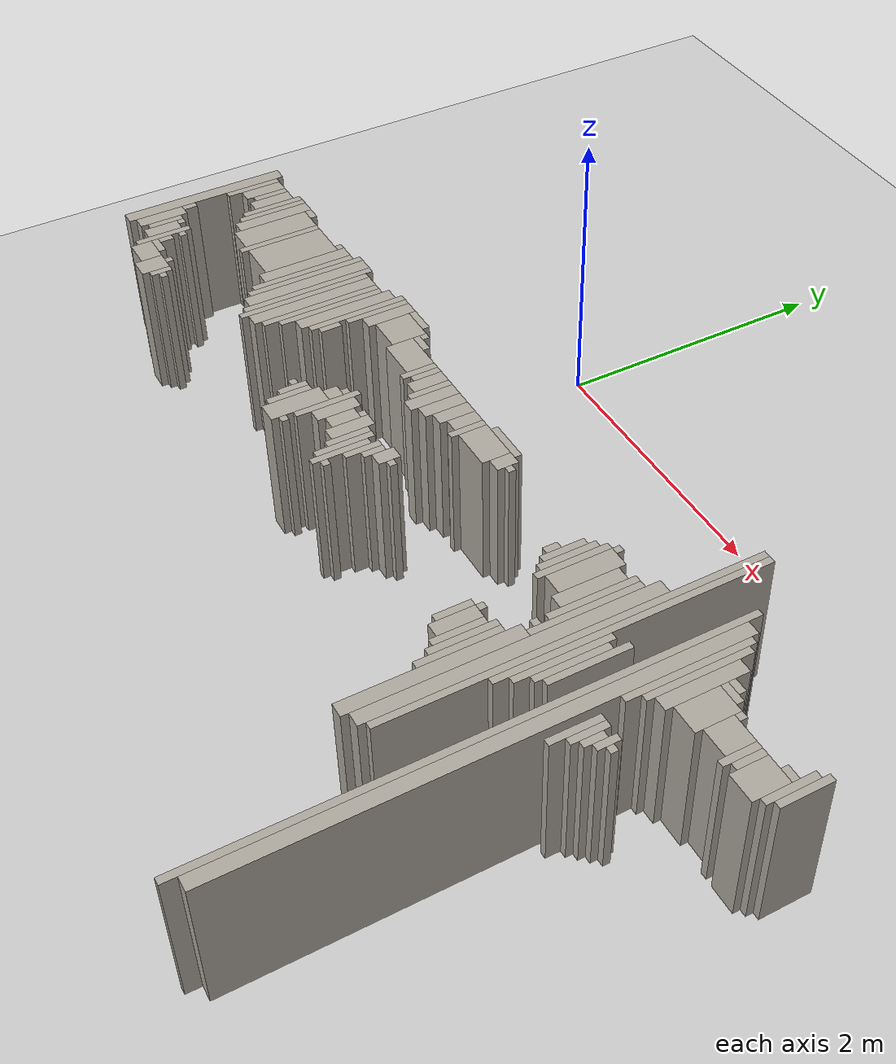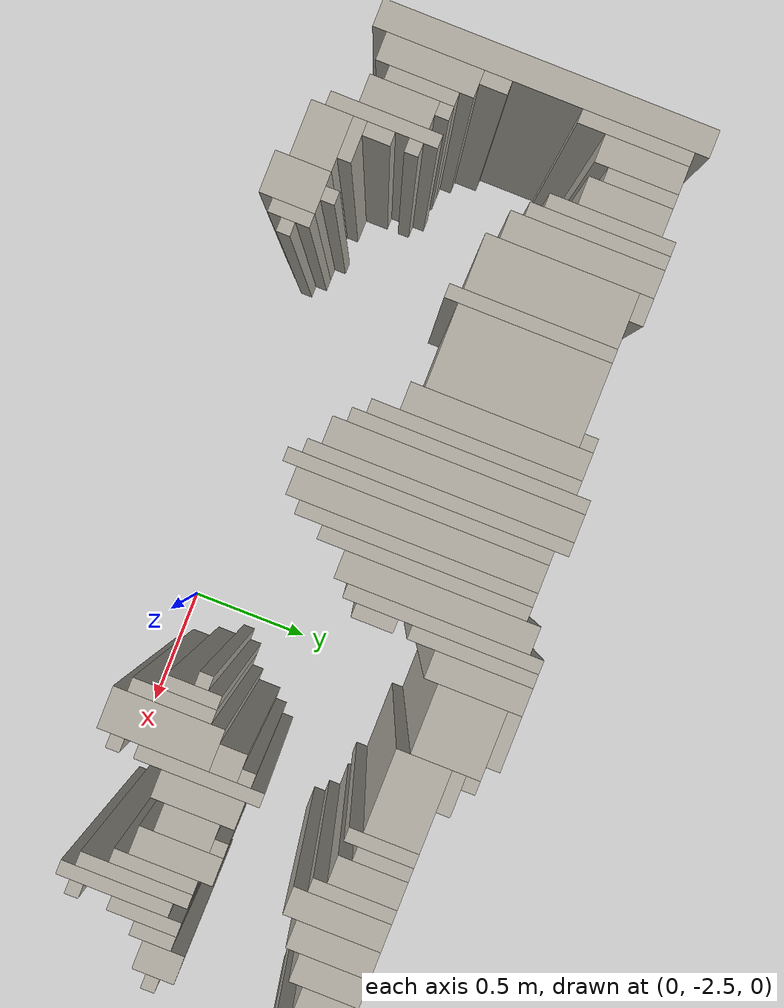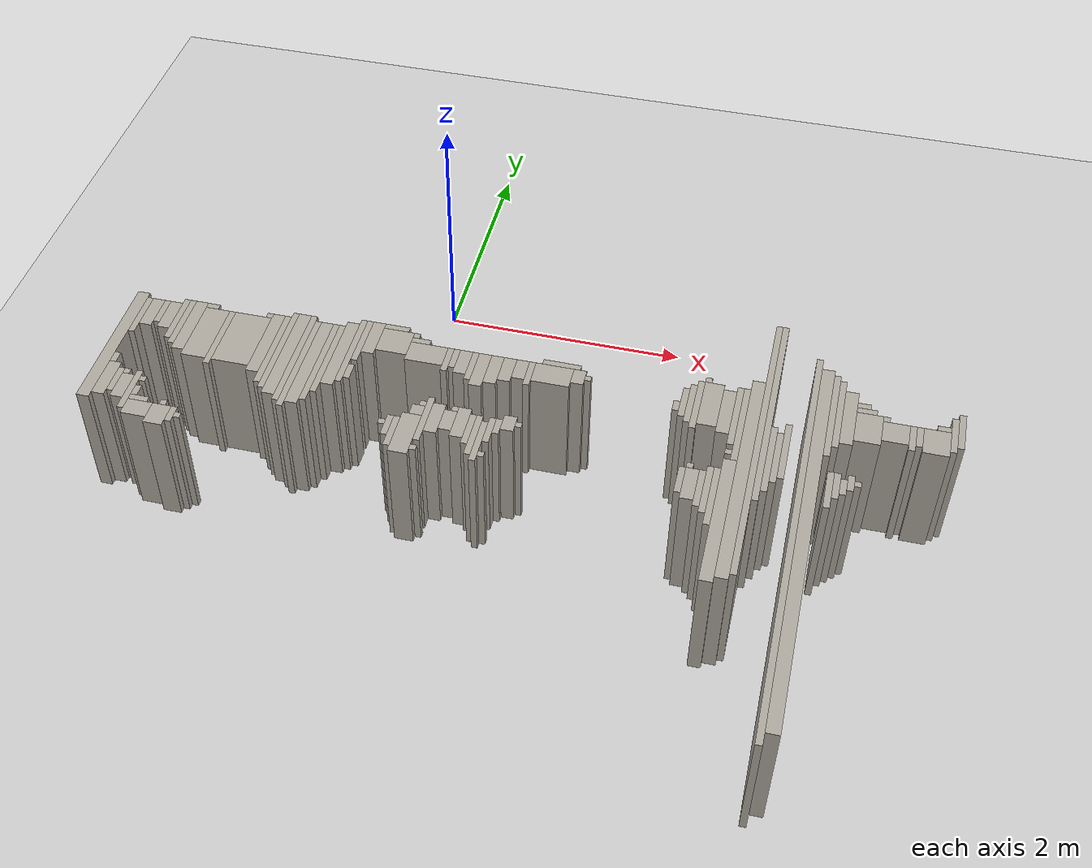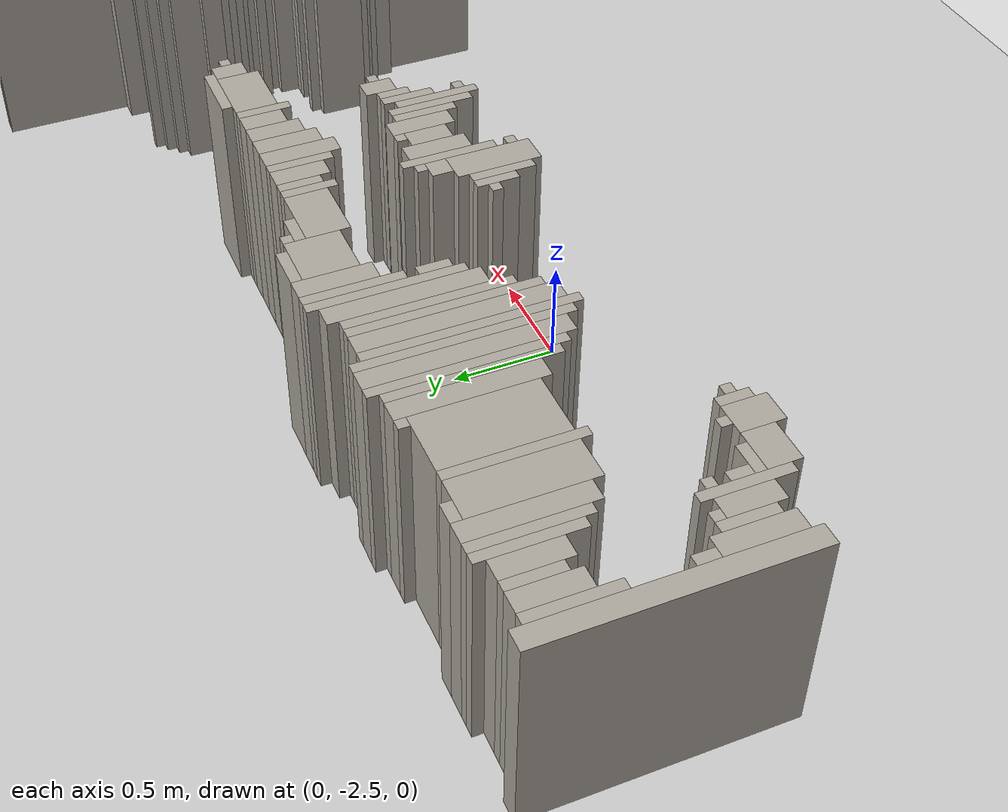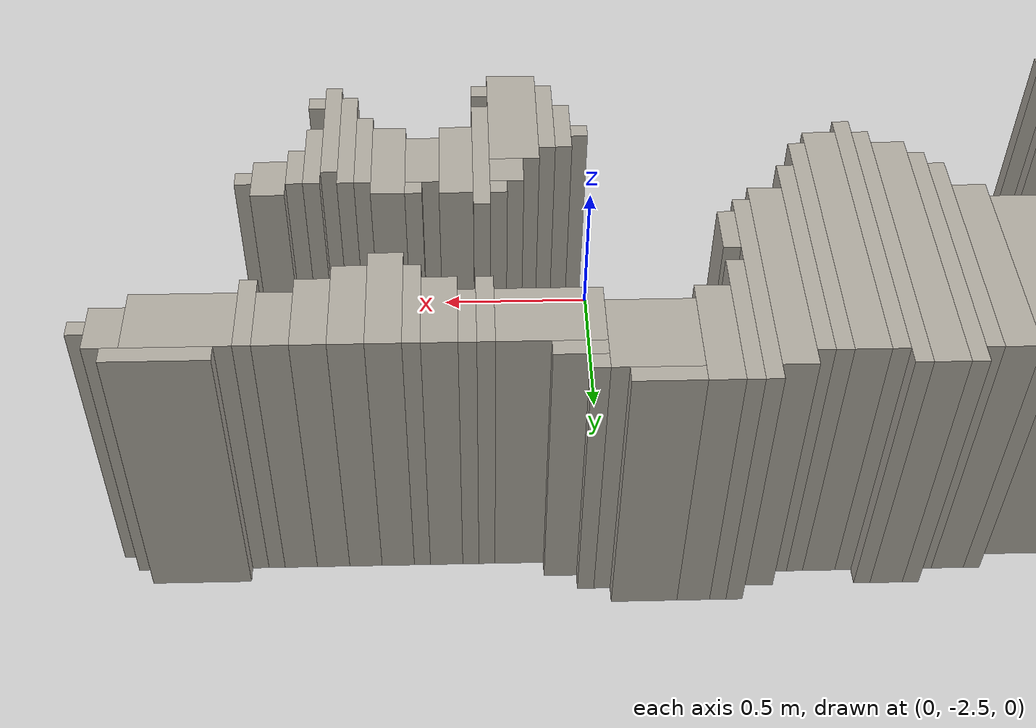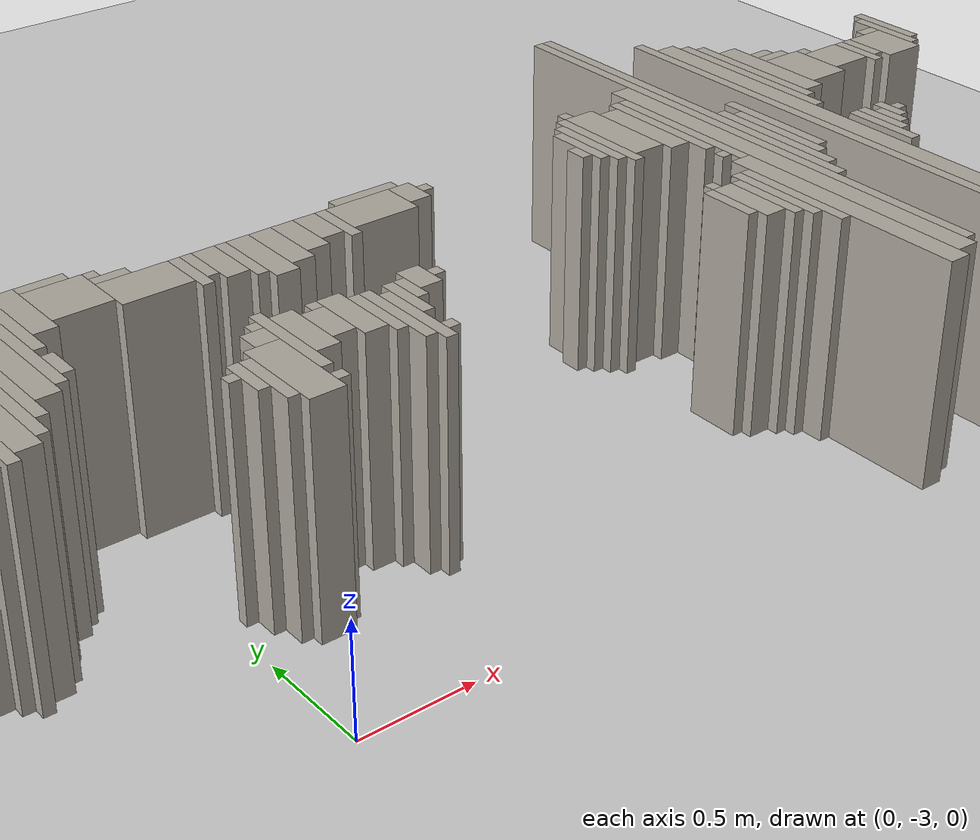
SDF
<sdf version="1.6">
 <world name="fr079_office">
  <include><uri>model://sun</uri></include>
  <include><uri>model://ground_plane</uri></include>
  <model name="fr079_office_walls">
   <static>true</static>
   <link name="w0868">
    <pose>3.177 -2.581 0.500 0 0 0</pose>
    <collision name="c"><geometry><box><size>0.050 3.550 1.000</size></box></geometry></collision>
    <visual name="v">
     <geometry><box><size>0.050 3.550 1.000</size></box></geometry>
     <material><ambient>0.68 0.66 0.62 1</ambient><diffuse>0.68 0.66 0.62 1</diffuse></material>
    </visual>
   </link>
   <link name="w0894">
    <pose>3.252 -2.581 0.500 0 0 0</pose>
    <collision name="c"><geometry><box><size>0.100 3.350 1.000</size></box></geometry></collision>
    <visual name="v">
     <geometry><box><size>0.100 3.350 1.000</size></box></geometry>
     <material><ambient>0.68 0.66 0.62 1</ambient><diffuse>0.68 0.66 0.62 1</diffuse></material>
    </visual>
   </link>
   <link name="w1125">
    <pose>2.652 -2.581 0.500 0 0 0</pose>
    <collision name="c"><geometry><box><size>0.100 1.150 1.000</size></box></geometry></collision>
    <visual name="v">
     <geometry><box><size>0.100 1.150 1.000</size></box></geometry>
     <material><ambient>0.68 0.66 0.62 1</ambient><diffuse>0.68 0.66 0.62 1</diffuse></material>
    </visual>
   </link>
   <link name="w1133">
    <pose>2.752 -2.131 0.500 0 0 0</pose>
    <collision name="c"><geometry><box><size>0.100 1.950 1.000</size></box></geometry></collision>
    <visual name="v">
     <geometry><box><size>0.100 1.950 1.000</size></box></geometry>
     <material><ambient>0.68 0.66 0.62 1</ambient><diffuse>0.68 0.66 0.62 1</diffuse></material>
    </visual>
   </link>
   <link name="w1141">
    <pose>2.827 -1.781 0.500 0 0 0</pose>
    <collision name="c"><geometry><box><size>0.050 2.550 1.000</size></box></geometry></collision>
    <visual name="v">
     <geometry><box><size>0.050 2.550 1.000</size></box></geometry>
     <material><ambient>0.68 0.66 0.62 1</ambient><diffuse>0.68 0.66 0.62 1</diffuse></material>
    </visual>
   </link>
   <link name="w1235">
    <pose>-1.573 -2.556 0.500 0 0 0</pose>
    <collision name="c"><geometry><box><size>0.150 0.200 1.000</size></box></geometry></collision>
    <visual name="v">
     <geometry><box><size>0.150 0.200 1.000</size></box></geometry>
     <material><ambient>0.68 0.66 0.62 1</ambient><diffuse>0.68 0.66 0.62 1</diffuse></material>
    </visual>
   </link>
   <link name="w1236">
    <pose>2.577 -2.381 0.500 0 0 0</pose>
    <collision name="c"><geometry><box><size>0.050 0.550 1.000</size></box></geometry></collision>
    <visual name="v">
     <geometry><box><size>0.050 0.550 1.000</size></box></geometry>
     <material><ambient>0.68 0.66 0.62 1</ambient><diffuse>0.68 0.66 0.62 1</diffuse></material>
    </visual>
   </link>
   <link name="w1254">
    <pose>-1.748 -2.531 0.500 0 0 0</pose>
    <collision name="c"><geometry><box><size>0.200 0.150 1.000</size></box></geometry></collision>
    <visual name="v">
     <geometry><box><size>0.200 0.150 1.000</size></box></geometry>
     <material><ambient>0.68 0.66 0.62 1</ambient><diffuse>0.68 0.66 0.62 1</diffuse></material>
    </visual>
   </link>
   <link name="w1255">
    <pose>-1.473 -2.531 0.500 0 0 0</pose>
    <collision name="c"><geometry><box><size>0.050 0.150 1.000</size></box></geometry></collision>
    <visual name="v">
     <geometry><box><size>0.050 0.150 1.000</size></box></geometry>
     <material><ambient>0.68 0.66 0.62 1</ambient><diffuse>0.68 0.66 0.62 1</diffuse></material>
    </visual>
   </link>
   <link name="w1272">
    <pose>-1.873 -2.356 0.500 0 0 0</pose>
    <collision name="c"><geometry><box><size>0.050 0.400 1.000</size></box></geometry></collision>
    <visual name="v">
     <geometry><box><size>0.050 0.400 1.000</size></box></geometry>
     <material><ambient>0.68 0.66 0.62 1</ambient><diffuse>0.68 0.66 0.62 1</diffuse></material>
    </visual>
   </link>
   <link name="w1273">
    <pose>-1.423 -2.531 0.500 0 0 0</pose>
    <collision name="c"><geometry><box><size>0.050 0.050 1.000</size></box></geometry></collision>
    <visual name="v">
     <geometry><box><size>0.050 0.050 1.000</size></box></geometry>
     <material><ambient>0.68 0.66 0.62 1</ambient><diffuse>0.68 0.66 0.62 1</diffuse></material>
    </visual>
   </link>
   <link name="w1274">
    <pose>2.527 -2.331 0.500 0 0 0</pose>
    <collision name="c"><geometry><box><size>0.050 0.450 1.000</size></box></geometry></collision>
    <visual name="v">
     <geometry><box><size>0.050 0.450 1.000</size></box></geometry>
     <material><ambient>0.68 0.66 0.62 1</ambient><diffuse>0.68 0.66 0.62 1</diffuse></material>
    </visual>
   </link>
   <link name="w1284">
    <pose>-2.198 -1.906 0.500 0 0 0</pose>
    <collision name="c"><geometry><box><size>0.100 1.200 1.000</size></box></geometry></collision>
    <visual name="v">
     <geometry><box><size>0.100 1.200 1.000</size></box></geometry>
     <material><ambient>0.68 0.66 0.62 1</ambient><diffuse>0.68 0.66 0.62 1</diffuse></material>
    </visual>
   </link>
   <link name="w1285">
    <pose>0.277 -2.306 0.500 0 0 0</pose>
    <collision name="c"><geometry><box><size>0.150 0.400 1.000</size></box></geometry></collision>
    <visual name="v">
     <geometry><box><size>0.150 0.400 1.000</size></box></geometry>
     <material><ambient>0.68 0.66 0.62 1</ambient><diffuse>0.68 0.66 0.62 1</diffuse></material>
    </visual>
   </link>
   <link name="w1286">
    <pose>2.477 -2.331 0.500 0 0 0</pose>
    <collision name="c"><geometry><box><size>0.050 0.350 1.000</size></box></geometry></collision>
    <visual name="v">
     <geometry><box><size>0.050 0.350 1.000</size></box></geometry>
     <material><ambient>0.68 0.66 0.62 1</ambient><diffuse>0.68 0.66 0.62 1</diffuse></material>
    </visual>
   </link>
   <link name="w1300">
    <pose>-2.098 -2.281 0.500 0 0 0</pose>
    <collision name="c"><geometry><box><size>0.100 0.350 1.000</size></box></geometry></collision>
    <visual name="v">
     <geometry><box><size>0.100 0.350 1.000</size></box></geometry>
     <material><ambient>0.68 0.66 0.62 1</ambient><diffuse>0.68 0.66 0.62 1</diffuse></material>
    </visual>
   </link>
   <link name="w1301">
    <pose>-1.948 -2.331 0.500 0 0 0</pose>
    <collision name="c"><geometry><box><size>0.100 0.250 1.000</size></box></geometry></collision>
    <visual name="v">
     <geometry><box><size>0.100 0.250 1.000</size></box></geometry>
     <material><ambient>0.68 0.66 0.62 1</ambient><diffuse>0.68 0.66 0.62 1</diffuse></material>
    </visual>
   </link>
   <link name="w1302">
    <pose>-1.773 -2.431 0.500 0 0 0</pose>
    <collision name="c"><geometry><box><size>0.150 0.050 1.000</size></box></geometry></collision>
    <visual name="v">
     <geometry><box><size>0.150 0.050 1.000</size></box></geometry>
     <material><ambient>0.68 0.66 0.62 1</ambient><diffuse>0.68 0.66 0.62 1</diffuse></material>
    </visual>
   </link>
   <link name="w1303">
    <pose>-1.573 -2.431 0.500 0 0 0</pose>
    <collision name="c"><geometry><box><size>0.050 0.050 1.000</size></box></geometry></collision>
    <visual name="v">
     <geometry><box><size>0.050 0.050 1.000</size></box></geometry>
     <material><ambient>0.68 0.66 0.62 1</ambient><diffuse>0.68 0.66 0.62 1</diffuse></material>
    </visual>
   </link>
   <link name="w1304">
    <pose>0.177 -2.306 0.500 0 0 0</pose>
    <collision name="c"><geometry><box><size>0.050 0.300 1.000</size></box></geometry></collision>
    <visual name="v">
     <geometry><box><size>0.050 0.300 1.000</size></box></geometry>
     <material><ambient>0.68 0.66 0.62 1</ambient><diffuse>0.68 0.66 0.62 1</diffuse></material>
    </visual>
   </link>
   <link name="w1305">
    <pose>0.377 -2.431 0.500 0 0 0</pose>
    <collision name="c"><geometry><box><size>0.050 0.050 1.000</size></box></geometry></collision>
    <visual name="v">
     <geometry><box><size>0.050 0.050 1.000</size></box></geometry>
     <material><ambient>0.68 0.66 0.62 1</ambient><diffuse>0.68 0.66 0.62 1</diffuse></material>
    </visual>
   </link>
   <link name="w1306">
    <pose>0.827 -2.256 0.500 0 0 0</pose>
    <collision name="c"><geometry><box><size>0.050 0.400 1.000</size></box></geometry></collision>
    <visual name="v">
     <geometry><box><size>0.050 0.400 1.000</size></box></geometry>
     <material><ambient>0.68 0.66 0.62 1</ambient><diffuse>0.68 0.66 0.62 1</diffuse></material>
    </visual>
   </link>
   <link name="w1307">
    <pose>2.402 -2.306 0.500 0 0 0</pose>
    <collision name="c"><geometry><box><size>0.100 0.300 1.000</size></box></geometry></collision>
    <visual name="v">
     <geometry><box><size>0.100 0.300 1.000</size></box></geometry>
     <material><ambient>0.68 0.66 0.62 1</ambient><diffuse>0.68 0.66 0.62 1</diffuse></material>
    </visual>
   </link>
   <link name="w1320">
    <pose>-2.023 -2.281 0.500 0 0 0</pose>
    <collision name="c"><geometry><box><size>0.050 0.250 1.000</size></box></geometry></collision>
    <visual name="v">
     <geometry><box><size>0.050 0.250 1.000</size></box></geometry>
     <material><ambient>0.68 0.66 0.62 1</ambient><diffuse>0.68 0.66 0.62 1</diffuse></material>
    </visual>
   </link>
   <link name="w1321">
    <pose>-1.823 -2.356 0.500 0 0 0</pose>
    <collision name="c"><geometry><box><size>0.050 0.100 1.000</size></box></geometry></collision>
    <visual name="v">
     <geometry><box><size>0.050 0.100 1.000</size></box></geometry>
     <material><ambient>0.68 0.66 0.62 1</ambient><diffuse>0.68 0.66 0.62 1</diffuse></material>
    </visual>
   </link>
   <link name="w1322">
    <pose>0.777 -2.206 0.500 0 0 0</pose>
    <collision name="c"><geometry><box><size>0.050 0.400 1.000</size></box></geometry></collision>
    <visual name="v">
     <geometry><box><size>0.050 0.400 1.000</size></box></geometry>
     <material><ambient>0.68 0.66 0.62 1</ambient><diffuse>0.68 0.66 0.62 1</diffuse></material>
    </visual>
   </link>
   <link name="w1323">
    <pose>0.877 -2.381 0.500 0 0 0</pose>
    <collision name="c"><geometry><box><size>0.050 0.050 1.000</size></box></geometry></collision>
    <visual name="v">
     <geometry><box><size>0.050 0.050 1.000</size></box></geometry>
     <material><ambient>0.68 0.66 0.62 1</ambient><diffuse>0.68 0.66 0.62 1</diffuse></material>
    </visual>
   </link>
   <link name="w1324">
    <pose>2.327 -2.281 0.500 0 0 0</pose>
    <collision name="c"><geometry><box><size>0.050 0.250 1.000</size></box></geometry></collision>
    <visual name="v">
     <geometry><box><size>0.050 0.250 1.000</size></box></geometry>
     <material><ambient>0.68 0.66 0.62 1</ambient><diffuse>0.68 0.66 0.62 1</diffuse></material>
    </visual>
   </link>
   <link name="w1338">
    <pose>0.127 -2.256 0.500 0 0 0</pose>
    <collision name="c"><geometry><box><size>0.050 0.200 1.000</size></box></geometry></collision>
    <visual name="v">
     <geometry><box><size>0.050 0.200 1.000</size></box></geometry>
     <material><ambient>0.68 0.66 0.62 1</ambient><diffuse>0.68 0.66 0.62 1</diffuse></material>
    </visual>
   </link>
   <link name="w1339">
    <pose>0.377 -2.131 0.500 0 0 0</pose>
    <collision name="c"><geometry><box><size>0.050 0.450 1.000</size></box></geometry></collision>
    <visual name="v">
     <geometry><box><size>0.050 0.450 1.000</size></box></geometry>
     <material><ambient>0.68 0.66 0.62 1</ambient><diffuse>0.68 0.66 0.62 1</diffuse></material>
    </visual>
   </link>
   <link name="w1340">
    <pose>2.877 -1.431 0.500 0 0 0</pose>
    <collision name="c"><geometry><box><size>0.050 1.850 1.000</size></box></geometry></collision>
    <visual name="v">
     <geometry><box><size>0.050 1.850 1.000</size></box></geometry>
     <material><ambient>0.68 0.66 0.62 1</ambient><diffuse>0.68 0.66 0.62 1</diffuse></material>
    </visual>
   </link>
   <link name="w1355">
    <pose>0.727 -2.156 0.500 0 0 0</pose>
    <collision name="c"><geometry><box><size>0.050 0.300 1.000</size></box></geometry></collision>
    <visual name="v">
     <geometry><box><size>0.050 0.300 1.000</size></box></geometry>
     <material><ambient>0.68 0.66 0.62 1</ambient><diffuse>0.68 0.66 0.62 1</diffuse></material>
    </visual>
   </link>
   <link name="w1356">
    <pose>3.377 -2.131 0.500 0 0 0</pose>
    <collision name="c"><geometry><box><size>0.050 0.350 1.000</size></box></geometry></collision>
    <visual name="v">
     <geometry><box><size>0.050 0.350 1.000</size></box></geometry>
     <material><ambient>0.68 0.66 0.62 1</ambient><diffuse>0.68 0.66 0.62 1</diffuse></material>
    </visual>
   </link>
   <link name="w1372">
    <pose>-1.823 -2.231 0.500 0 0 0</pose>
    <collision name="c"><geometry><box><size>0.050 0.050 1.000</size></box></geometry></collision>
    <visual name="v">
     <geometry><box><size>0.050 0.050 1.000</size></box></geometry>
     <material><ambient>0.68 0.66 0.62 1</ambient><diffuse>0.68 0.66 0.62 1</diffuse></material>
    </visual>
   </link>
   <link name="w1373">
    <pose>-0.723 -1.781 0.500 0 0 0</pose>
    <collision name="c"><geometry><box><size>0.050 0.950 1.000</size></box></geometry></collision>
    <visual name="v">
     <geometry><box><size>0.050 0.950 1.000</size></box></geometry>
     <material><ambient>0.68 0.66 0.62 1</ambient><diffuse>0.68 0.66 0.62 1</diffuse></material>
    </visual>
   </link>
   <link name="w1374">
    <pose>0.077 -2.231 0.500 0 0 0</pose>
    <collision name="c"><geometry><box><size>0.050 0.050 1.000</size></box></geometry></collision>
    <visual name="v">
     <geometry><box><size>0.050 0.050 1.000</size></box></geometry>
     <material><ambient>0.68 0.66 0.62 1</ambient><diffuse>0.68 0.66 0.62 1</diffuse></material>
    </visual>
   </link>
   <link name="w1375">
    <pose>0.452 -2.106 0.500 0 0 0</pose>
    <collision name="c"><geometry><box><size>0.100 0.300 1.000</size></box></geometry></collision>
    <visual name="v">
     <geometry><box><size>0.100 0.300 1.000</size></box></geometry>
     <material><ambient>0.68 0.66 0.62 1</ambient><diffuse>0.68 0.66 0.62 1</diffuse></material>
    </visual>
   </link>
   <link name="w1376">
    <pose>0.652 -2.106 0.500 0 0 0</pose>
    <collision name="c"><geometry><box><size>0.100 0.300 1.000</size></box></geometry></collision>
    <visual name="v">
     <geometry><box><size>0.100 0.300 1.000</size></box></geometry>
     <material><ambient>0.68 0.66 0.62 1</ambient><diffuse>0.68 0.66 0.62 1</diffuse></material>
    </visual>
   </link>
   <link name="w1377">
    <pose>0.877 -2.131 0.500 0 0 0</pose>
    <collision name="c"><geometry><box><size>0.050 0.250 1.000</size></box></geometry></collision>
    <visual name="v">
     <geometry><box><size>0.050 0.250 1.000</size></box></geometry>
     <material><ambient>0.68 0.66 0.62 1</ambient><diffuse>0.68 0.66 0.62 1</diffuse></material>
    </visual>
   </link>
   <link name="w1378">
    <pose>2.927 -1.931 0.500 0 0 0</pose>
    <collision name="c"><geometry><box><size>0.050 0.650 1.000</size></box></geometry></collision>
    <visual name="v">
     <geometry><box><size>0.050 0.650 1.000</size></box></geometry>
     <material><ambient>0.68 0.66 0.62 1</ambient><diffuse>0.68 0.66 0.62 1</diffuse></material>
    </visual>
   </link>
   <link name="w1393">
    <pose>-1.973 -2.181 0.500 0 0 0</pose>
    <collision name="c"><geometry><box><size>0.050 0.050 1.000</size></box></geometry></collision>
    <visual name="v">
     <geometry><box><size>0.050 0.050 1.000</size></box></geometry>
     <material><ambient>0.68 0.66 0.62 1</ambient><diffuse>0.68 0.66 0.62 1</diffuse></material>
    </visual>
   </link>
   <link name="w1394">
    <pose>-0.773 -1.731 0.500 0 0 0</pose>
    <collision name="c"><geometry><box><size>0.050 0.950 1.000</size></box></geometry></collision>
    <visual name="v">
     <geometry><box><size>0.050 0.950 1.000</size></box></geometry>
     <material><ambient>0.68 0.66 0.62 1</ambient><diffuse>0.68 0.66 0.62 1</diffuse></material>
    </visual>
   </link>
   <link name="w1395">
    <pose>-0.648 -1.756 0.500 0 0 0</pose>
    <collision name="c"><geometry><box><size>0.100 0.900 1.000</size></box></geometry></collision>
    <visual name="v">
     <geometry><box><size>0.100 0.900 1.000</size></box></geometry>
     <material><ambient>0.68 0.66 0.62 1</ambient><diffuse>0.68 0.66 0.62 1</diffuse></material>
    </visual>
   </link>
   <link name="w1396">
    <pose>0.552 -2.106 0.500 0 0 0</pose>
    <collision name="c"><geometry><box><size>0.100 0.200 1.000</size></box></geometry></collision>
    <visual name="v">
     <geometry><box><size>0.100 0.200 1.000</size></box></geometry>
     <material><ambient>0.68 0.66 0.62 1</ambient><diffuse>0.68 0.66 0.62 1</diffuse></material>
    </visual>
   </link>
   <link name="w1397">
    <pose>3.427 -2.081 0.500 0 0 0</pose>
    <collision name="c"><geometry><box><size>0.050 0.250 1.000</size></box></geometry></collision>
    <visual name="v">
     <geometry><box><size>0.050 0.250 1.000</size></box></geometry>
     <material><ambient>0.68 0.66 0.62 1</ambient><diffuse>0.68 0.66 0.62 1</diffuse></material>
    </visual>
   </link>
   <link name="w1409">
    <pose>-0.848 -1.706 0.500 0 0 0</pose>
    <collision name="c"><geometry><box><size>0.100 0.900 1.000</size></box></geometry></collision>
    <visual name="v">
     <geometry><box><size>0.100 0.900 1.000</size></box></geometry>
     <material><ambient>0.68 0.66 0.62 1</ambient><diffuse>0.68 0.66 0.62 1</diffuse></material>
    </visual>
   </link>
   <link name="w1410">
    <pose>-0.573 -1.731 0.500 0 0 0</pose>
    <collision name="c"><geometry><box><size>0.050 0.850 1.000</size></box></geometry></collision>
    <visual name="v">
     <geometry><box><size>0.050 0.850 1.000</size></box></geometry>
     <material><ambient>0.68 0.66 0.62 1</ambient><diffuse>0.68 0.66 0.62 1</diffuse></material>
    </visual>
   </link>
   <link name="w1411">
    <pose>0.927 -2.081 0.500 0 0 0</pose>
    <collision name="c"><geometry><box><size>0.050 0.150 1.000</size></box></geometry></collision>
    <visual name="v">
     <geometry><box><size>0.050 0.150 1.000</size></box></geometry>
     <material><ambient>0.68 0.66 0.62 1</ambient><diffuse>0.68 0.66 0.62 1</diffuse></material>
    </visual>
   </link>
   <link name="w1412">
    <pose>2.377 -2.131 0.500 0 0 0</pose>
    <collision name="c"><geometry><box><size>0.050 0.050 1.000</size></box></geometry></collision>
    <visual name="v">
     <geometry><box><size>0.050 0.050 1.000</size></box></geometry>
     <material><ambient>0.68 0.66 0.62 1</ambient><diffuse>0.68 0.66 0.62 1</diffuse></material>
    </visual>
   </link>
   <link name="w1413">
    <pose>2.977 -1.906 0.500 0 0 0</pose>
    <collision name="c"><geometry><box><size>0.050 0.500 1.000</size></box></geometry></collision>
    <visual name="v">
     <geometry><box><size>0.050 0.500 1.000</size></box></geometry>
     <material><ambient>0.68 0.66 0.62 1</ambient><diffuse>0.68 0.66 0.62 1</diffuse></material>
    </visual>
   </link>
   <link name="w1414">
    <pose>3.477 -2.081 0.500 0 0 0</pose>
    <collision name="c"><geometry><box><size>0.050 0.150 1.000</size></box></geometry></collision>
    <visual name="v">
     <geometry><box><size>0.050 0.150 1.000</size></box></geometry>
     <material><ambient>0.68 0.66 0.62 1</ambient><diffuse>0.68 0.66 0.62 1</diffuse></material>
    </visual>
   </link>
   <link name="w1424">
    <pose>-2.123 -2.056 0.500 0 0 0</pose>
    <collision name="c"><geometry><box><size>0.050 0.100 1.000</size></box></geometry></collision>
    <visual name="v">
     <geometry><box><size>0.050 0.100 1.000</size></box></geometry>
     <material><ambient>0.68 0.66 0.62 1</ambient><diffuse>0.68 0.66 0.62 1</diffuse></material>
    </visual>
   </link>
   <link name="w1425">
    <pose>-0.923 -1.681 0.500 0 0 0</pose>
    <collision name="c"><geometry><box><size>0.050 0.850 1.000</size></box></geometry></collision>
    <visual name="v">
     <geometry><box><size>0.050 0.850 1.000</size></box></geometry>
     <material><ambient>0.68 0.66 0.62 1</ambient><diffuse>0.68 0.66 0.62 1</diffuse></material>
    </visual>
   </link>
   <link name="w1426">
    <pose>0.302 -2.056 0.500 0 0 0</pose>
    <collision name="c"><geometry><box><size>0.100 0.100 1.000</size></box></geometry></collision>
    <visual name="v">
     <geometry><box><size>0.100 0.100 1.000</size></box></geometry>
     <material><ambient>0.68 0.66 0.62 1</ambient><diffuse>0.68 0.66 0.62 1</diffuse></material>
    </visual>
   </link>
   <link name="w1427">
    <pose>1.002 -2.031 0.500 0 0 0</pose>
    <collision name="c"><geometry><box><size>0.100 0.150 1.000</size></box></geometry></collision>
    <visual name="v">
     <geometry><box><size>0.100 0.150 1.000</size></box></geometry>
     <material><ambient>0.68 0.66 0.62 1</ambient><diffuse>0.68 0.66 0.62 1</diffuse></material>
    </visual>
   </link>
   <link name="w1428">
    <pose>3.027 -1.831 0.500 0 0 0</pose>
    <collision name="c"><geometry><box><size>0.050 0.550 1.000</size></box></geometry></collision>
    <visual name="v">
     <geometry><box><size>0.050 0.550 1.000</size></box></geometry>
     <material><ambient>0.68 0.66 0.62 1</ambient><diffuse>0.68 0.66 0.62 1</diffuse></material>
    </visual>
   </link>
   <link name="w1429">
    <pose>3.527 -2.031 0.500 0 0 0</pose>
    <collision name="c"><geometry><box><size>0.050 0.150 1.000</size></box></geometry></collision>
    <visual name="v">
     <geometry><box><size>0.050 0.150 1.000</size></box></geometry>
     <material><ambient>0.68 0.66 0.62 1</ambient><diffuse>0.68 0.66 0.62 1</diffuse></material>
    </visual>
   </link>
   <link name="w1438">
    <pose>-0.973 -1.681 0.500 0 0 0</pose>
    <collision name="c"><geometry><box><size>0.050 0.750 1.000</size></box></geometry></collision>
    <visual name="v">
     <geometry><box><size>0.050 0.750 1.000</size></box></geometry>
     <material><ambient>0.68 0.66 0.62 1</ambient><diffuse>0.68 0.66 0.62 1</diffuse></material>
    </visual>
   </link>
   <link name="w1439">
    <pose>-0.523 -1.681 0.500 0 0 0</pose>
    <collision name="c"><geometry><box><size>0.050 0.750 1.000</size></box></geometry></collision>
    <visual name="v">
     <geometry><box><size>0.050 0.750 1.000</size></box></geometry>
     <material><ambient>0.68 0.66 0.62 1</ambient><diffuse>0.68 0.66 0.62 1</diffuse></material>
    </visual>
   </link>
   <link name="w1440">
    <pose>1.077 -2.031 0.500 0 0 0</pose>
    <collision name="c"><geometry><box><size>0.050 0.050 1.000</size></box></geometry></collision>
    <visual name="v">
     <geometry><box><size>0.050 0.050 1.000</size></box></geometry>
     <material><ambient>0.68 0.66 0.62 1</ambient><diffuse>0.68 0.66 0.62 1</diffuse></material>
    </visual>
   </link>
   <link name="w1441">
    <pose>3.577 -2.031 0.500 0 0 0</pose>
    <collision name="c"><geometry><box><size>0.050 0.050 1.000</size></box></geometry></collision>
    <visual name="v">
     <geometry><box><size>0.050 0.050 1.000</size></box></geometry>
     <material><ambient>0.68 0.66 0.62 1</ambient><diffuse>0.68 0.66 0.62 1</diffuse></material>
    </visual>
   </link>
   <link name="w1456">
    <pose>0.327 -1.981 0.500 0 0 0</pose>
    <collision name="c"><geometry><box><size>0.050 0.050 1.000</size></box></geometry></collision>
    <visual name="v">
     <geometry><box><size>0.050 0.050 1.000</size></box></geometry>
     <material><ambient>0.68 0.66 0.62 1</ambient><diffuse>0.68 0.66 0.62 1</diffuse></material>
    </visual>
   </link>
   <link name="w1457">
    <pose>0.577 -1.981 0.500 0 0 0</pose>
    <collision name="c"><geometry><box><size>0.050 0.050 1.000</size></box></geometry></collision>
    <visual name="v">
     <geometry><box><size>0.050 0.050 1.000</size></box></geometry>
     <material><ambient>0.68 0.66 0.62 1</ambient><diffuse>0.68 0.66 0.62 1</diffuse></material>
    </visual>
   </link>
   <link name="w1458">
    <pose>2.677 -1.631 0.500 0 0 0</pose>
    <collision name="c"><geometry><box><size>0.050 0.750 1.000</size></box></geometry></collision>
    <visual name="v">
     <geometry><box><size>0.050 0.750 1.000</size></box></geometry>
     <material><ambient>0.68 0.66 0.62 1</ambient><diffuse>0.68 0.66 0.62 1</diffuse></material>
    </visual>
   </link>
   <link name="w1470">
    <pose>-1.423 -1.656 0.500 0 0 0</pose>
    <collision name="c"><geometry><box><size>0.050 0.600 1.000</size></box></geometry></collision>
    <visual name="v">
     <geometry><box><size>0.050 0.600 1.000</size></box></geometry>
     <material><ambient>0.68 0.66 0.62 1</ambient><diffuse>0.68 0.66 0.62 1</diffuse></material>
    </visual>
   </link>
   <link name="w1471">
    <pose>-1.048 -1.631 0.500 0 0 0</pose>
    <collision name="c"><geometry><box><size>0.100 0.650 1.000</size></box></geometry></collision>
    <visual name="v">
     <geometry><box><size>0.100 0.650 1.000</size></box></geometry>
     <material><ambient>0.68 0.66 0.62 1</ambient><diffuse>0.68 0.66 0.62 1</diffuse></material>
    </visual>
   </link>
   <link name="w1472">
    <pose>-0.448 -1.606 0.500 0 0 0</pose>
    <collision name="c"><geometry><box><size>0.100 0.700 1.000</size></box></geometry></collision>
    <visual name="v">
     <geometry><box><size>0.100 0.700 1.000</size></box></geometry>
     <material><ambient>0.68 0.66 0.62 1</ambient><diffuse>0.68 0.66 0.62 1</diffuse></material>
    </visual>
   </link>
   <link name="w1473">
    <pose>2.627 -1.931 0.500 0 0 0</pose>
    <collision name="c"><geometry><box><size>0.050 0.050 1.000</size></box></geometry></collision>
    <visual name="v">
     <geometry><box><size>0.050 0.050 1.000</size></box></geometry>
     <material><ambient>0.68 0.66 0.62 1</ambient><diffuse>0.68 0.66 0.62 1</diffuse></material>
    </visual>
   </link>
   <link name="w1490">
    <pose>-1.548 -1.631 0.500 0 0 0</pose>
    <collision name="c"><geometry><box><size>0.200 0.550 1.000</size></box></geometry></collision>
    <visual name="v">
     <geometry><box><size>0.200 0.550 1.000</size></box></geometry>
     <material><ambient>0.68 0.66 0.62 1</ambient><diffuse>0.68 0.66 0.62 1</diffuse></material>
    </visual>
   </link>
   <link name="w1491">
    <pose>-1.248 -1.631 0.500 0 0 0</pose>
    <collision name="c"><geometry><box><size>0.300 0.550 1.000</size></box></geometry></collision>
    <visual name="v">
     <geometry><box><size>0.300 0.550 1.000</size></box></geometry>
     <material><ambient>0.68 0.66 0.62 1</ambient><diffuse>0.68 0.66 0.62 1</diffuse></material>
    </visual>
   </link>
   <link name="w1492">
    <pose>-0.373 -1.556 0.500 0 0 0</pose>
    <collision name="c"><geometry><box><size>0.050 0.700 1.000</size></box></geometry></collision>
    <visual name="v">
     <geometry><box><size>0.050 0.700 1.000</size></box></geometry>
     <material><ambient>0.68 0.66 0.62 1</ambient><diffuse>0.68 0.66 0.62 1</diffuse></material>
    </visual>
   </link>
   <link name="w1506">
    <pose>-1.698 -1.581 0.500 0 0 0</pose>
    <collision name="c"><geometry><box><size>0.100 0.550 1.000</size></box></geometry></collision>
    <visual name="v">
     <geometry><box><size>0.100 0.550 1.000</size></box></geometry>
     <material><ambient>0.68 0.66 0.62 1</ambient><diffuse>0.68 0.66 0.62 1</diffuse></material>
    </visual>
   </link>
   <link name="w1507">
    <pose>-0.323 -1.781 0.500 0 0 0</pose>
    <collision name="c"><geometry><box><size>0.050 0.150 1.000</size></box></geometry></collision>
    <visual name="v">
     <geometry><box><size>0.050 0.150 1.000</size></box></geometry>
     <material><ambient>0.68 0.66 0.62 1</ambient><diffuse>0.68 0.66 0.62 1</diffuse></material>
    </visual>
   </link>
   <link name="w1508">
    <pose>2.627 -1.556 0.500 0 0 0</pose>
    <collision name="c"><geometry><box><size>0.050 0.600 1.000</size></box></geometry></collision>
    <visual name="v">
     <geometry><box><size>0.050 0.600 1.000</size></box></geometry>
     <material><ambient>0.68 0.66 0.62 1</ambient><diffuse>0.68 0.66 0.62 1</diffuse></material>
    </visual>
   </link>
   <link name="w1517">
    <pose>-1.773 -1.556 0.500 0 0 0</pose>
    <collision name="c"><geometry><box><size>0.050 0.500 1.000</size></box></geometry></collision>
    <visual name="v">
     <geometry><box><size>0.050 0.500 1.000</size></box></geometry>
     <material><ambient>0.68 0.66 0.62 1</ambient><diffuse>0.68 0.66 0.62 1</diffuse></material>
    </visual>
   </link>
   <link name="w1518">
    <pose>3.327 -1.381 0.500 0 0 0</pose>
    <collision name="c"><geometry><box><size>0.050 0.850 1.000</size></box></geometry></collision>
    <visual name="v">
     <geometry><box><size>0.050 0.850 1.000</size></box></geometry>
     <material><ambient>0.68 0.66 0.62 1</ambient><diffuse>0.68 0.66 0.62 1</diffuse></material>
    </visual>
   </link>
   <link name="w1533">
    <pose>-2.123 -1.556 0.500 0 0 0</pose>
    <collision name="c"><geometry><box><size>0.050 0.400 1.000</size></box></geometry></collision>
    <visual name="v">
     <geometry><box><size>0.050 0.400 1.000</size></box></geometry>
     <material><ambient>0.68 0.66 0.62 1</ambient><diffuse>0.68 0.66 0.62 1</diffuse></material>
    </visual>
   </link>
   <link name="w1534">
    <pose>-1.823 -1.531 0.500 0 0 0</pose>
    <collision name="c"><geometry><box><size>0.050 0.450 1.000</size></box></geometry></collision>
    <visual name="v">
     <geometry><box><size>0.050 0.450 1.000</size></box></geometry>
     <material><ambient>0.68 0.66 0.62 1</ambient><diffuse>0.68 0.66 0.62 1</diffuse></material>
    </visual>
   </link>
   <link name="w1535">
    <pose>2.327 -1.506 0.500 0 0 0</pose>
    <collision name="c"><geometry><box><size>0.050 0.500 1.000</size></box></geometry></collision>
    <visual name="v">
     <geometry><box><size>0.050 0.500 1.000</size></box></geometry>
     <material><ambient>0.68 0.66 0.62 1</ambient><diffuse>0.68 0.66 0.62 1</diffuse></material>
    </visual>
   </link>
   <link name="w1536">
    <pose>2.552 -1.531 0.500 0 0 0</pose>
    <collision name="c"><geometry><box><size>0.100 0.450 1.000</size></box></geometry></collision>
    <visual name="v">
     <geometry><box><size>0.100 0.450 1.000</size></box></geometry>
     <material><ambient>0.68 0.66 0.62 1</ambient><diffuse>0.68 0.66 0.62 1</diffuse></material>
    </visual>
   </link>
   <link name="w1553">
    <pose>0.652 -1.531 0.500 0 0 0</pose>
    <collision name="c"><geometry><box><size>0.100 0.350 1.000</size></box></geometry></collision>
    <visual name="v">
     <geometry><box><size>0.100 0.350 1.000</size></box></geometry>
     <material><ambient>0.68 0.66 0.62 1</ambient><diffuse>0.68 0.66 0.62 1</diffuse></material>
    </visual>
   </link>
   <link name="w1554">
    <pose>2.277 -1.506 0.500 0 0 0</pose>
    <collision name="c"><geometry><box><size>0.050 0.400 1.000</size></box></geometry></collision>
    <visual name="v">
     <geometry><box><size>0.050 0.400 1.000</size></box></geometry>
     <material><ambient>0.68 0.66 0.62 1</ambient><diffuse>0.68 0.66 0.62 1</diffuse></material>
    </visual>
   </link>
   <link name="w1555">
    <pose>2.427 -1.481 0.500 0 0 0</pose>
    <collision name="c"><geometry><box><size>0.150 0.450 1.000</size></box></geometry></collision>
    <visual name="v">
     <geometry><box><size>0.150 0.450 1.000</size></box></geometry>
     <material><ambient>0.68 0.66 0.62 1</ambient><diffuse>0.68 0.66 0.62 1</diffuse></material>
    </visual>
   </link>
   <link name="w1556">
    <pose>3.377 -1.356 0.500 0 0 0</pose>
    <collision name="c"><geometry><box><size>0.050 0.700 1.000</size></box></geometry></collision>
    <visual name="v">
     <geometry><box><size>0.050 0.700 1.000</size></box></geometry>
     <material><ambient>0.68 0.66 0.62 1</ambient><diffuse>0.68 0.66 0.62 1</diffuse></material>
    </visual>
   </link>
   <link name="w1578">
    <pose>-2.048 -1.506 0.500 0 0 0</pose>
    <collision name="c"><geometry><box><size>0.100 0.300 1.000</size></box></geometry></collision>
    <visual name="v">
     <geometry><box><size>0.100 0.300 1.000</size></box></geometry>
     <material><ambient>0.68 0.66 0.62 1</ambient><diffuse>0.68 0.66 0.62 1</diffuse></material>
    </visual>
   </link>
   <link name="w1579">
    <pose>-1.898 -1.506 0.500 0 0 0</pose>
    <collision name="c"><geometry><box><size>0.100 0.300 1.000</size></box></geometry></collision>
    <visual name="v">
     <geometry><box><size>0.100 0.300 1.000</size></box></geometry>
     <material><ambient>0.68 0.66 0.62 1</ambient><diffuse>0.68 0.66 0.62 1</diffuse></material>
    </visual>
   </link>
   <link name="w1580">
    <pose>-0.323 -1.431 0.500 0 0 0</pose>
    <collision name="c"><geometry><box><size>0.050 0.450 1.000</size></box></geometry></collision>
    <visual name="v">
     <geometry><box><size>0.050 0.450 1.000</size></box></geometry>
     <material><ambient>0.68 0.66 0.62 1</ambient><diffuse>0.68 0.66 0.62 1</diffuse></material>
    </visual>
   </link>
   <link name="w1581">
    <pose>0.577 -1.506 0.500 0 0 0</pose>
    <collision name="c"><geometry><box><size>0.050 0.300 1.000</size></box></geometry></collision>
    <visual name="v">
     <geometry><box><size>0.050 0.300 1.000</size></box></geometry>
     <material><ambient>0.68 0.66 0.62 1</ambient><diffuse>0.68 0.66 0.62 1</diffuse></material>
    </visual>
   </link>
   <link name="w1582">
    <pose>0.752 -1.506 0.500 0 0 0</pose>
    <collision name="c"><geometry><box><size>0.100 0.300 1.000</size></box></geometry></collision>
    <visual name="v">
     <geometry><box><size>0.100 0.300 1.000</size></box></geometry>
     <material><ambient>0.68 0.66 0.62 1</ambient><diffuse>0.68 0.66 0.62 1</diffuse></material>
    </visual>
   </link>
   <link name="w1583">
    <pose>2.227 -1.506 0.500 0 0 0</pose>
    <collision name="c"><geometry><box><size>0.050 0.300 1.000</size></box></geometry></collision>
    <visual name="v">
     <geometry><box><size>0.050 0.300 1.000</size></box></geometry>
     <material><ambient>0.68 0.66 0.62 1</ambient><diffuse>0.68 0.66 0.62 1</diffuse></material>
    </visual>
   </link>
   <link name="w1584">
    <pose>3.452 -1.381 0.500 0 0 0</pose>
    <collision name="c"><geometry><box><size>0.100 0.550 1.000</size></box></geometry></collision>
    <visual name="v">
     <geometry><box><size>0.100 0.550 1.000</size></box></geometry>
     <material><ambient>0.68 0.66 0.62 1</ambient><diffuse>0.68 0.66 0.62 1</diffuse></material>
    </visual>
   </link>
   <link name="w1608">
    <pose>-1.973 -1.481 0.500 0 0 0</pose>
    <collision name="c"><geometry><box><size>0.050 0.250 1.000</size></box></geometry></collision>
    <visual name="v">
     <geometry><box><size>0.050 0.250 1.000</size></box></geometry>
     <material><ambient>0.68 0.66 0.62 1</ambient><diffuse>0.68 0.66 0.62 1</diffuse></material>
    </visual>
   </link>
   <link name="w1609">
    <pose>0.377 -1.481 0.500 0 0 0</pose>
    <collision name="c"><geometry><box><size>0.050 0.250 1.000</size></box></geometry></collision>
    <visual name="v">
     <geometry><box><size>0.050 0.250 1.000</size></box></geometry>
     <material><ambient>0.68 0.66 0.62 1</ambient><diffuse>0.68 0.66 0.62 1</diffuse></material>
    </visual>
   </link>
   <link name="w1610">
    <pose>0.502 -1.481 0.500 0 0 0</pose>
    <collision name="c"><geometry><box><size>0.100 0.250 1.000</size></box></geometry></collision>
    <visual name="v">
     <geometry><box><size>0.100 0.250 1.000</size></box></geometry>
     <material><ambient>0.68 0.66 0.62 1</ambient><diffuse>0.68 0.66 0.62 1</diffuse></material>
    </visual>
   </link>
   <link name="w1611">
    <pose>0.852 -1.481 0.500 0 0 0</pose>
    <collision name="c"><geometry><box><size>0.100 0.250 1.000</size></box></geometry></collision>
    <visual name="v">
     <geometry><box><size>0.100 0.250 1.000</size></box></geometry>
     <material><ambient>0.68 0.66 0.62 1</ambient><diffuse>0.68 0.66 0.62 1</diffuse></material>
    </visual>
   </link>
   <link name="w1612">
    <pose>1.027 -1.481 0.500 0 0 0</pose>
    <collision name="c"><geometry><box><size>0.050 0.250 1.000</size></box></geometry></collision>
    <visual name="v">
     <geometry><box><size>0.050 0.250 1.000</size></box></geometry>
     <material><ambient>0.68 0.66 0.62 1</ambient><diffuse>0.68 0.66 0.62 1</diffuse></material>
    </visual>
   </link>
   <link name="w1613">
    <pose>2.177 -1.556 0.500 0 0 0</pose>
    <collision name="c"><geometry><box><size>0.050 0.100 1.000</size></box></geometry></collision>
    <visual name="v">
     <geometry><box><size>0.050 0.100 1.000</size></box></geometry>
     <material><ambient>0.68 0.66 0.62 1</ambient><diffuse>0.68 0.66 0.62 1</diffuse></material>
    </visual>
   </link>
   <link name="w1614">
    <pose>3.602 -1.456 0.500 0 0 0</pose>
    <collision name="c"><geometry><box><size>0.200 0.300 1.000</size></box></geometry></collision>
    <visual name="v">
     <geometry><box><size>0.200 0.300 1.000</size></box></geometry>
     <material><ambient>0.68 0.66 0.62 1</ambient><diffuse>0.68 0.66 0.62 1</diffuse></material>
    </visual>
   </link>
   <link name="w1615">
    <pose>3.927 -1.481 0.500 0 0 0</pose>
    <collision name="c"><geometry><box><size>0.050 0.250 1.000</size></box></geometry></collision>
    <visual name="v">
     <geometry><box><size>0.050 0.250 1.000</size></box></geometry>
     <material><ambient>0.68 0.66 0.62 1</ambient><diffuse>0.68 0.66 0.62 1</diffuse></material>
    </visual>
   </link>
   <link name="w1616">
    <pose>4.102 -1.481 0.500 0 0 0</pose>
    <collision name="c"><geometry><box><size>0.200 0.250 1.000</size></box></geometry></collision>
    <visual name="v">
     <geometry><box><size>0.200 0.250 1.000</size></box></geometry>
     <material><ambient>0.68 0.66 0.62 1</ambient><diffuse>0.68 0.66 0.62 1</diffuse></material>
    </visual>
   </link>
   <link name="w1638">
    <pose>-0.248 -1.381 0.500 0 0 0</pose>
    <collision name="c"><geometry><box><size>0.100 0.350 1.000</size></box></geometry></collision>
    <visual name="v">
     <geometry><box><size>0.100 0.350 1.000</size></box></geometry>
     <material><ambient>0.68 0.66 0.62 1</ambient><diffuse>0.68 0.66 0.62 1</diffuse></material>
    </visual>
   </link>
   <link name="w1639">
    <pose>0.202 -1.456 0.500 0 0 0</pose>
    <collision name="c"><geometry><box><size>0.300 0.200 1.000</size></box></geometry></collision>
    <visual name="v">
     <geometry><box><size>0.300 0.200 1.000</size></box></geometry>
     <material><ambient>0.68 0.66 0.62 1</ambient><diffuse>0.68 0.66 0.62 1</diffuse></material>
    </visual>
   </link>
   <link name="w1640">
    <pose>0.427 -1.456 0.500 0 0 0</pose>
    <collision name="c"><geometry><box><size>0.050 0.200 1.000</size></box></geometry></collision>
    <visual name="v">
     <geometry><box><size>0.050 0.200 1.000</size></box></geometry>
     <material><ambient>0.68 0.66 0.62 1</ambient><diffuse>0.68 0.66 0.62 1</diffuse></material>
    </visual>
   </link>
   <link name="w1641">
    <pose>0.952 -1.456 0.500 0 0 0</pose>
    <collision name="c"><geometry><box><size>0.100 0.200 1.000</size></box></geometry></collision>
    <visual name="v">
     <geometry><box><size>0.100 0.200 1.000</size></box></geometry>
     <material><ambient>0.68 0.66 0.62 1</ambient><diffuse>0.68 0.66 0.62 1</diffuse></material>
    </visual>
   </link>
   <link name="w1642">
    <pose>1.202 -1.456 0.500 0 0 0</pose>
    <collision name="c"><geometry><box><size>0.300 0.200 1.000</size></box></geometry></collision>
    <visual name="v">
     <geometry><box><size>0.300 0.200 1.000</size></box></geometry>
     <material><ambient>0.68 0.66 0.62 1</ambient><diffuse>0.68 0.66 0.62 1</diffuse></material>
    </visual>
   </link>
   <link name="w1644">
    <pose>3.802 -1.456 0.500 0 0 0</pose>
    <collision name="c"><geometry><box><size>0.200 0.200 1.000</size></box></geometry></collision>
    <visual name="v">
     <geometry><box><size>0.200 0.200 1.000</size></box></geometry>
     <material><ambient>0.68 0.66 0.62 1</ambient><diffuse>0.68 0.66 0.62 1</diffuse></material>
    </visual>
   </link>
   <link name="w1645">
    <pose>3.977 -1.456 0.500 0 0 0</pose>
    <collision name="c"><geometry><box><size>0.050 0.200 1.000</size></box></geometry></collision>
    <visual name="v">
     <geometry><box><size>0.050 0.200 1.000</size></box></geometry>
     <material><ambient>0.68 0.66 0.62 1</ambient><diffuse>0.68 0.66 0.62 1</diffuse></material>
    </visual>
   </link>
   <link name="w1646">
    <pose>4.227 -1.381 0.500 0 0 0</pose>
    <collision name="c"><geometry><box><size>0.050 0.350 1.000</size></box></geometry></collision>
    <visual name="v">
     <geometry><box><size>0.050 0.350 1.000</size></box></geometry>
     <material><ambient>0.68 0.66 0.62 1</ambient><diffuse>0.68 0.66 0.62 1</diffuse></material>
    </visual>
   </link>
   <link name="w1668">
    <pose>-0.073 -1.381 0.500 0 0 0</pose>
    <collision name="c"><geometry><box><size>0.250 0.250 1.000</size></box></geometry></collision>
    <visual name="v">
     <geometry><box><size>0.250 0.250 1.000</size></box></geometry>
     <material><ambient>0.68 0.66 0.62 1</ambient><diffuse>0.68 0.66 0.62 1</diffuse></material>
    </visual>
   </link>
   <link name="w1669">
    <pose>1.402 -1.431 0.500 0 0 0</pose>
    <collision name="c"><geometry><box><size>0.100 0.150 1.000</size></box></geometry></collision>
    <visual name="v">
     <geometry><box><size>0.100 0.150 1.000</size></box></geometry>
     <material><ambient>0.68 0.66 0.62 1</ambient><diffuse>0.68 0.66 0.62 1</diffuse></material>
    </visual>
   </link>
   <link name="w1671">
    <pose>4.277 -1.331 0.500 0 0 0</pose>
    <collision name="c"><geometry><box><size>0.050 0.350 1.000</size></box></geometry></collision>
    <visual name="v">
     <geometry><box><size>0.050 0.350 1.000</size></box></geometry>
     <material><ambient>0.68 0.66 0.62 1</ambient><diffuse>0.68 0.66 0.62 1</diffuse></material>
    </visual>
   </link>
   <link name="w1689">
    <pose>1.477 -1.431 0.500 0 0 0</pose>
    <collision name="c"><geometry><box><size>0.050 0.050 1.000</size></box></geometry></collision>
    <visual name="v">
     <geometry><box><size>0.050 0.050 1.000</size></box></geometry>
     <material><ambient>0.68 0.66 0.62 1</ambient><diffuse>0.68 0.66 0.62 1</diffuse></material>
    </visual>
   </link>
   <link name="w1710">
    <pose>-1.598 -1.331 0.500 0 0 0</pose>
    <collision name="c"><geometry><box><size>0.100 0.050 1.000</size></box></geometry></collision>
    <visual name="v">
     <geometry><box><size>0.100 0.050 1.000</size></box></geometry>
     <material><ambient>0.68 0.66 0.62 1</ambient><diffuse>0.68 0.66 0.62 1</diffuse></material>
    </visual>
   </link>
   <link name="w1711">
    <pose>-1.123 -1.331 0.500 0 0 0</pose>
    <collision name="c"><geometry><box><size>0.050 0.050 1.000</size></box></geometry></collision>
    <visual name="v">
     <geometry><box><size>0.050 0.050 1.000</size></box></geometry>
     <material><ambient>0.68 0.66 0.62 1</ambient><diffuse>0.68 0.66 0.62 1</diffuse></material>
    </visual>
   </link>
   <link name="w1712">
    <pose>0.127 -1.331 0.500 0 0 0</pose>
    <collision name="c"><geometry><box><size>0.150 0.050 1.000</size></box></geometry></collision>
    <visual name="v">
     <geometry><box><size>0.150 0.050 1.000</size></box></geometry>
     <material><ambient>0.68 0.66 0.62 1</ambient><diffuse>0.68 0.66 0.62 1</diffuse></material>
    </visual>
   </link>
   <link name="w1713">
    <pose>1.252 -1.331 0.500 0 0 0</pose>
    <collision name="c"><geometry><box><size>0.300 0.050 1.000</size></box></geometry></collision>
    <visual name="v">
     <geometry><box><size>0.300 0.050 1.000</size></box></geometry>
     <material><ambient>0.68 0.66 0.62 1</ambient><diffuse>0.68 0.66 0.62 1</diffuse></material>
    </visual>
   </link>
   <link name="w1714">
    <pose>3.727 -1.331 0.500 0 0 0</pose>
    <collision name="c"><geometry><box><size>0.050 0.050 1.000</size></box></geometry></collision>
    <visual name="v">
     <geometry><box><size>0.050 0.050 1.000</size></box></geometry>
     <material><ambient>0.68 0.66 0.62 1</ambient><diffuse>0.68 0.66 0.62 1</diffuse></material>
    </visual>
   </link>
   <link name="w1715">
    <pose>4.152 -1.331 0.500 0 0 0</pose>
    <collision name="c"><geometry><box><size>0.100 0.050 1.000</size></box></geometry></collision>
    <visual name="v">
     <geometry><box><size>0.100 0.050 1.000</size></box></geometry>
     <material><ambient>0.68 0.66 0.62 1</ambient><diffuse>0.68 0.66 0.62 1</diffuse></material>
    </visual>
   </link>
   <link name="w1723">
    <pose>0.077 -1.281 0.500 0 0 0</pose>
    <collision name="c"><geometry><box><size>0.050 0.050 1.000</size></box></geometry></collision>
    <visual name="v">
     <geometry><box><size>0.050 0.050 1.000</size></box></geometry>
     <material><ambient>0.68 0.66 0.62 1</ambient><diffuse>0.68 0.66 0.62 1</diffuse></material>
    </visual>
   </link>
   <link name="w1725">
    <pose>3.577 -1.281 0.500 0 0 0</pose>
    <collision name="c"><geometry><box><size>0.150 0.050 1.000</size></box></geometry></collision>
    <visual name="v">
     <geometry><box><size>0.150 0.050 1.000</size></box></geometry>
     <material><ambient>0.68 0.66 0.62 1</ambient><diffuse>0.68 0.66 0.62 1</diffuse></material>
    </visual>
   </link>
   <link name="w1734">
    <pose>-0.098 -1.231 0.500 0 0 0</pose>
    <collision name="c"><geometry><box><size>0.200 0.050 1.000</size></box></geometry></collision>
    <visual name="v">
     <geometry><box><size>0.200 0.050 1.000</size></box></geometry>
     <material><ambient>0.68 0.66 0.62 1</ambient><diffuse>0.68 0.66 0.62 1</diffuse></material>
    </visual>
   </link>
   <link name="w1735">
    <pose>2.377 -1.231 0.500 0 0 0</pose>
    <collision name="c"><geometry><box><size>0.050 0.050 1.000</size></box></geometry></collision>
    <visual name="v">
     <geometry><box><size>0.050 0.050 1.000</size></box></geometry>
     <material><ambient>0.68 0.66 0.62 1</ambient><diffuse>0.68 0.66 0.62 1</diffuse></material>
    </visual>
   </link>
   <link name="w1736">
    <pose>3.552 -1.231 0.500 0 0 0</pose>
    <collision name="c"><geometry><box><size>0.100 0.050 1.000</size></box></geometry></collision>
    <visual name="v">
     <geometry><box><size>0.100 0.050 1.000</size></box></geometry>
     <material><ambient>0.68 0.66 0.62 1</ambient><diffuse>0.68 0.66 0.62 1</diffuse></material>
    </visual>
   </link>
  </model>
 </world>
</sdf>
